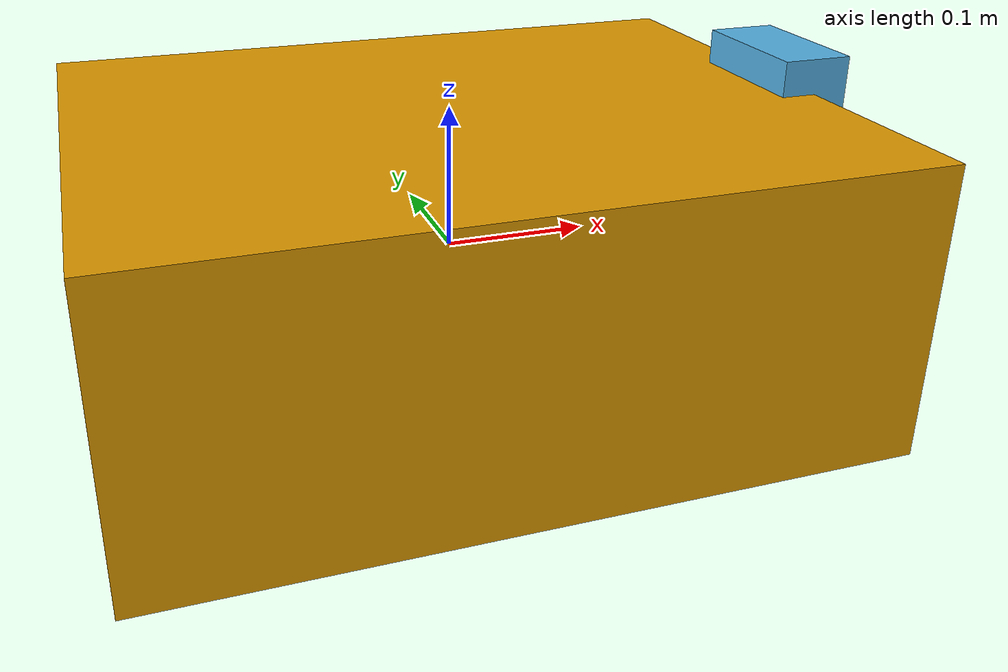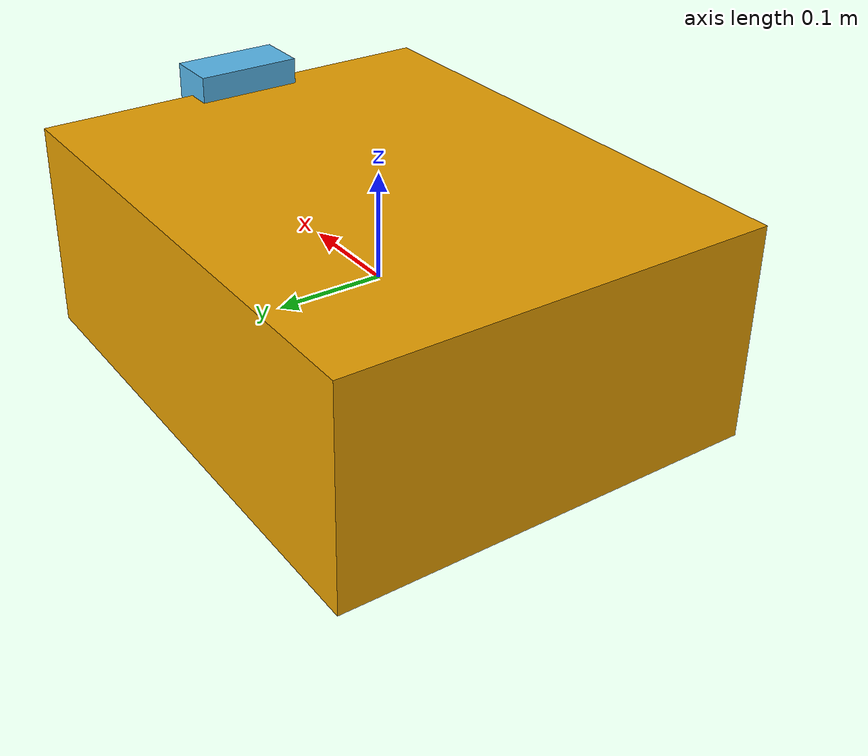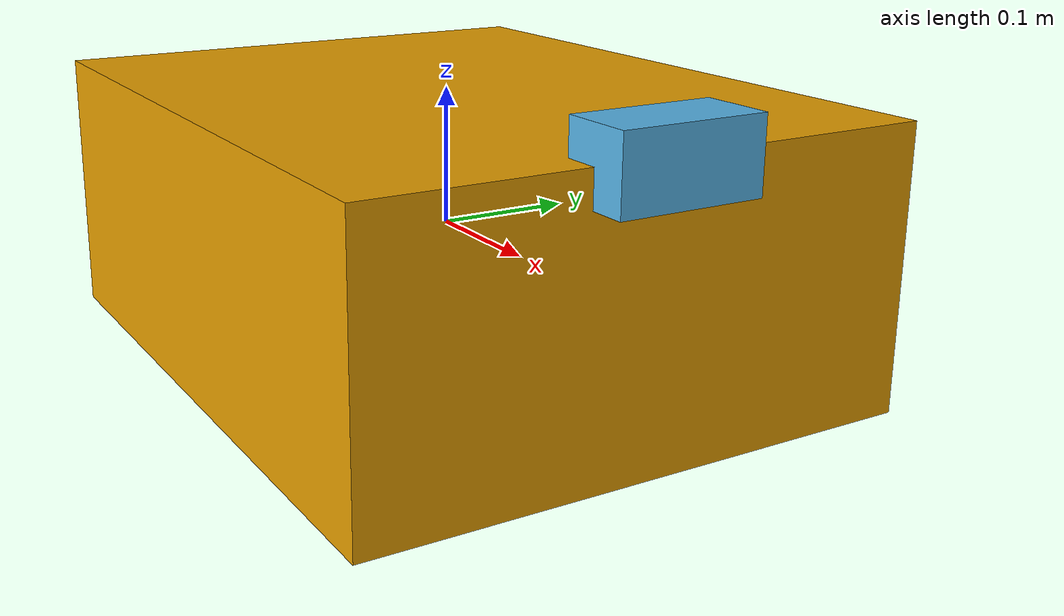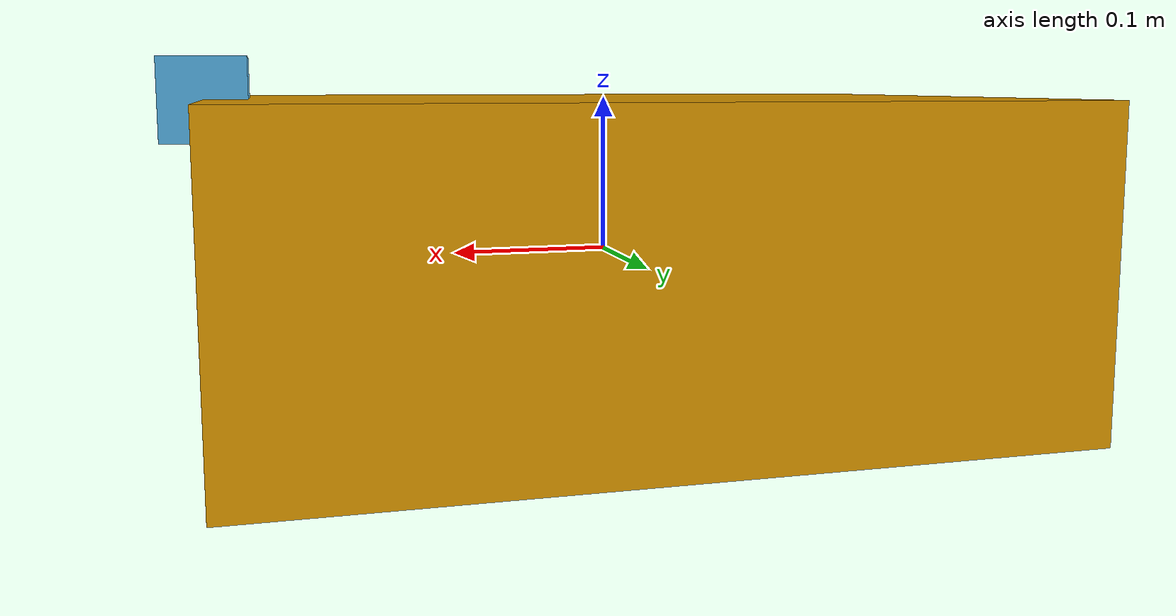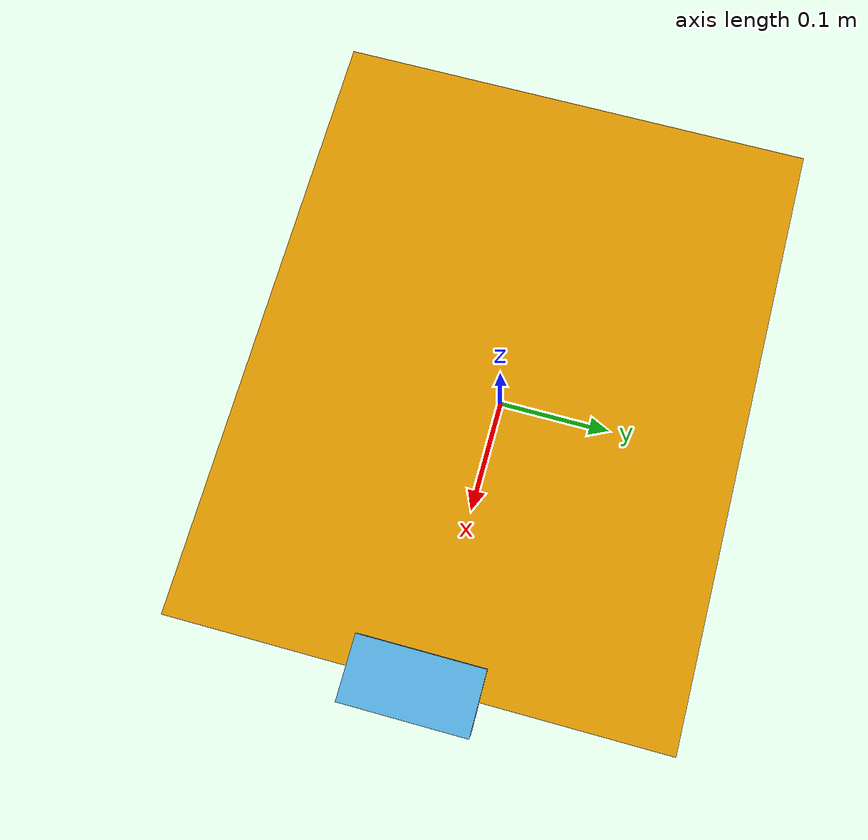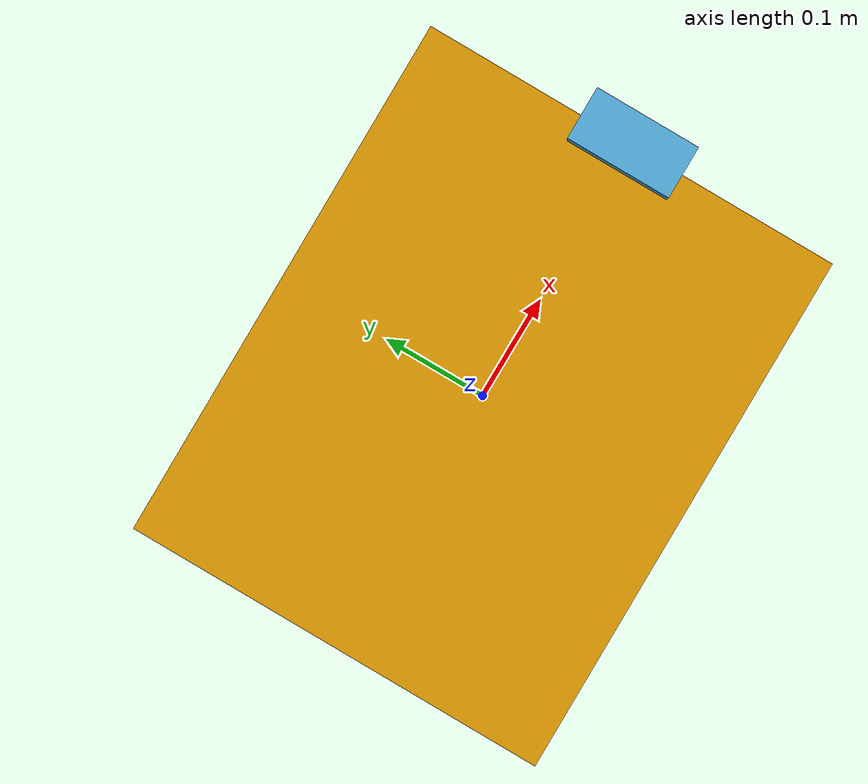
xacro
<?xml version="1.0"?>
<robot name="dominio_robot" xmlns:xacro="http://www.ros.org/wiki/xacro">

  <!-- TODO: medidas de tu robot, en metros y kilogramos. -->
  <xacro:property name="chassis_x" value="0.50"/>
  <xacro:property name="chassis_y" value="0.40"/>
  <xacro:property name="chassis_z" value="0.20"/>
  <xacro:property name="chassis_mass" value="12.0"/>

  <!-- Inercia de una caja maciza (teoría 05). -->
  <xacro:macro name="box_inertial" params="mass x y z">
    <inertial>
      <mass value="${mass}"/>
      <inertia ixx="${mass * (y*y + z*z) / 12}" ixy="0" ixz="0"
               iyy="${mass * (x*x + z*z) / 12}" iyz="0"
               izz="${mass * (x*x + y*y) / 12}"/>
    </inertial>
  </xacro:macro>

  <!-- base_link: el cuerpo del robot. Es el marco que mueve sensor_stub
       (odom -> base_link); no le cambies el nombre (REP 105). -->
  <link name="base_link">
    <visual>
      <geometry>
        <box size="${chassis_x} ${chassis_y} ${chassis_z}"/>
      </geometry>
    </visual>
    <collision>
      <geometry>
        <box size="${chassis_x} ${chassis_y} ${chassis_z}"/>
      </geometry>
    </collision>
    <xacro:box_inertial mass="${chassis_mass}" x="${chassis_x}" y="${chassis_y}" z="${chassis_z}"/>
  </link>

  <link name="sensor_link">
    <visual>
      <geometry>
        <box size="0.05 0.10 0.05"/>
      </geometry>
    </visual>
    <xacro:box_inertial mass="0.2" x="0.05" y="0.10" z="0.05"/>
  </link>

  <joint name="sensor_joint" type="fixed">
    <parent link="base_link"/>
    <child link="sensor_link"/>
    <origin xyz="${chassis_x / 2} 0 ${chassis_z / 2}" rpy="0 0 0"/>
  </joint>

</robot>
